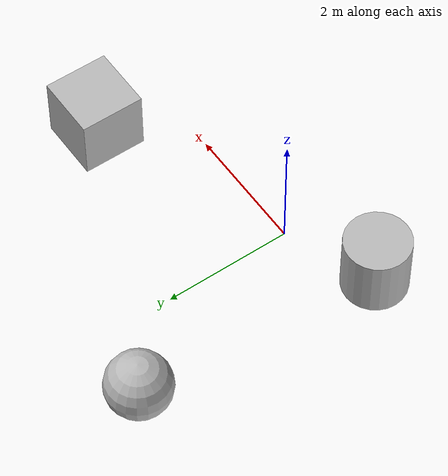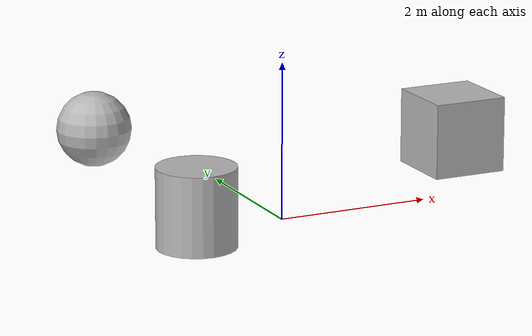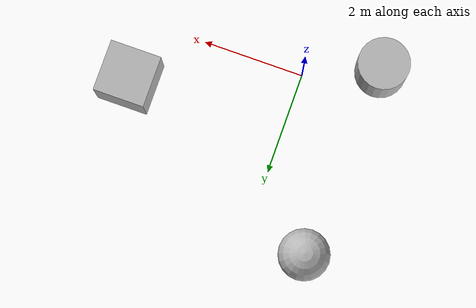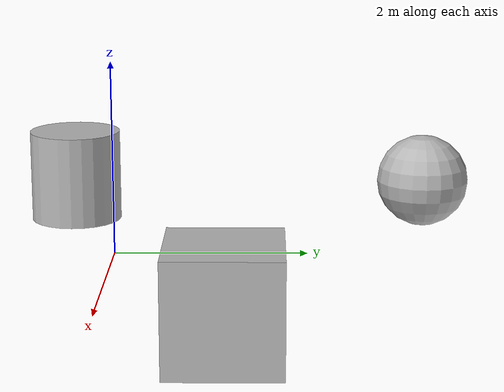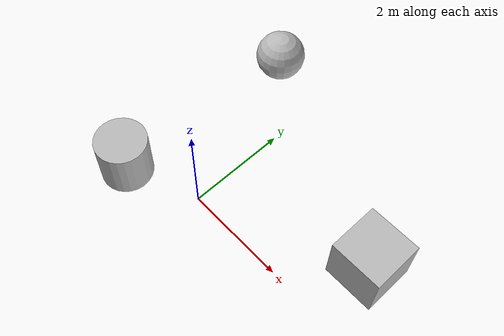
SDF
<?xml version="1.0" ?>
<sdf version="1.6">
  <world name="default">
    <light name="sun" type="directional">
      <cast_shadows>1</cast_shadows>
      <pose>0 0 10 0 0 0</pose>
      <diffuse>0.8 0.8 0.8 1</diffuse>
      <specular>0.2 0.2 0.2 1</specular>
      <attenuation>
        <range>1000</range>
        <constant>0.9</constant>
        <linear>0.01</linear>
        <quadratic>0.001</quadratic>
      </attenuation>
      <direction>-0.5 0.1 -0.9</direction>
      <cast_shadows>1</cast_shadows>
    </light>
    <model name="sphere_0">
      <pose>-1.178200392908333 3.302875956052259 0.5 0 0 0</pose>
      <link name="sphere_0_link">
        <pose>0 0 0 0 0 0</pose>
        <visual name="visual">
          <pose>0 0 0 0 0 0</pose>
          <geometry>
          <sphere><radius>0.5</radius></sphere>
          </geometry>
        </visual>
        <collision name="collision">
          <pose>0 0 0 0 0 0</pose>
          <geometry>
          <sphere><radius>0.5</radius></sphere>
          </geometry>
        </collision>
      </link>
    </model>
    <model name="box_0">
      <pose>3.0877573892662444 1.2226895456210487 0.5 0 0 0</pose>
      <link name="box_0_link">
        <pose>0 0 0 0 0 0</pose>
        <visual name="visual">
          <pose>0 0 0 0 0 0</pose>
          <geometry>
          <box><size>1 1 1</size></box>
          </geometry>
        </visual>
        <collision name="collision">
          <pose>0 0 0 0 0 0</pose>
          <geometry>
          <box><size>1 1 1</size></box>
          </geometry>
        </collision>
      </link>
    </model>
    <model name="cylinder_0">
      <pose>-1.409005109138522 -0.5663275962053689 0.5 0 0 0</pose>
      <link name="cylinder_0_link">
        <pose>0 0 0 0 0 0</pose>
        <visual name="visual">
          <pose>0 0 0 0 0 0</pose>
          <geometry>
          <cylinder><radius>0.5</radius><length>1</length></cylinder>
          </geometry>
        </visual>
        <collision name="collision">
          <pose>0 0 0 0 0 0</pose>
          <geometry>
          <cylinder><radius>0.5</radius><length>1</length></cylinder>
          </geometry>
        </collision>
      </link>
    </model>
  </world>
</sdf>
